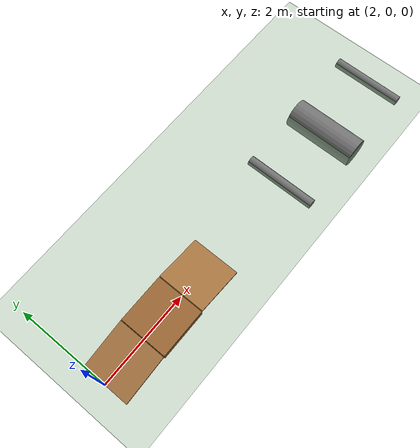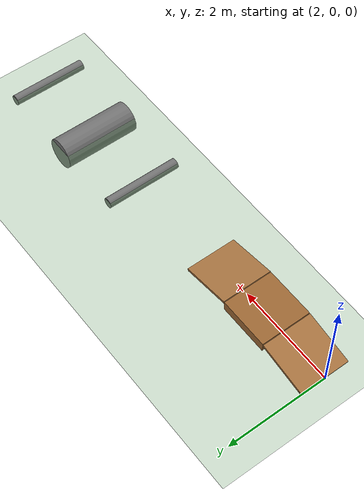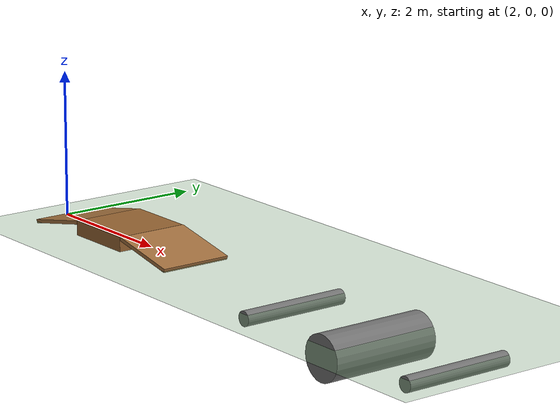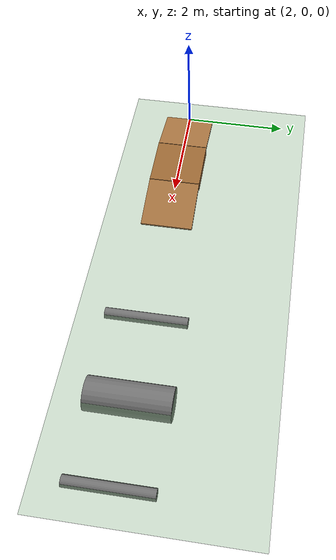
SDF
<?xml version="1.0" ?>
<sdf version="1.10">
  <world name="sensor_world">

    <!-- ===== Physics ===== -->
    <physics name="default_physics" default="0" type="dartsim">
      <max_step_size>0.001</max_step_size>
      <real_time_factor>1.0</real_time_factor>
    </physics>

    <!-- ===== Sistem pluginleri ===== -->
    <plugin filename="gz-sim-physics-system" name="gz::sim::systems::Physics"/>
    <plugin filename="gz-sim-user-commands-system" name="gz::sim::systems::UserCommands"/>
    <plugin filename="gz-sim-scene-broadcaster-system" name="gz::sim::systems::SceneBroadcaster"/>
    <plugin filename="gz-sim-contact-system" name="gz::sim::systems::Contact"/>
    <plugin filename="gz-sim-imu-system" name="gz::sim::systems::Imu"/>
    <plugin filename="gz-sim-navsat-system" name="gz::sim::systems::NavSat"/>
    <plugin filename="gz-sim-sensors-system" name="gz::sim::systems::Sensors">
      <render_engine>ogre2</render_engine>
    </plugin>

    <!-- ===== GPS referans noktası (Istanbul) ===== -->
    <spherical_coordinates>
      <surface_model>EARTH_WGS84</surface_model>
      <world_frame_orientation>ENU</world_frame_orientation>
      <latitude_deg>41.0082</latitude_deg>
      <longitude_deg>28.9784</longitude_deg>
      <elevation>40.0</elevation>
      <heading_deg>0</heading_deg>
    </spherical_coordinates>

    <!-- ===== Sahne görünümü ===== -->
    <scene>
      <ambient>0.4 0.4 0.4 1</ambient>
      <background>0.7 0.7 0.9 1</background>
      <shadows>true</shadows>
    </scene>

    <!-- ===== Güneş ===== -->
    <light type="directional" name="sun">
      <cast_shadows>true</cast_shadows>
      <pose>0 0 10 0 0 0</pose>
      <diffuse>0.8 0.8 0.8 1</diffuse>
      <specular>0.2 0.2 0.2 1</specular>
      <attenuation>
        <range>1000</range>
        <constant>0.9</constant>
        <linear>0.01</linear>
        <quadratic>0.001</quadratic>
      </attenuation>
      <direction>-0.5 0.1 -0.9</direction>
    </light>

    <!-- ===== Yer düzlemi ===== -->
    <model name="ground_plane">
      <static>true</static>
      <link name="link">
        <collision name="collision">
          <geometry>
            <plane>
              <normal>0 0 1</normal>
              <size>100 100</size>
            </plane>
          </geometry>
        </collision>
        <visual name="visual">
          <geometry>
            <plane>
              <normal>0 0 1</normal>
              <size>100 100</size>
            </plane>
          </geometry>
          <material>
            <ambient>0.3 0.5 0.3 1</ambient>
            <diffuse>0.4 0.6 0.4 1</diffuse>
            <specular>0.1 0.1 0.1 1</specular>
          </material>
        </visual>
      </link>
    </model>

    <!-- SENARYO 1: TEPE                                              -->
    <!--   Yokuş çık (1m, 11.5°), düz platform (1m, 20cm), yokuş in   -->

    <model name="hill_approach">
      <static>true</static>
      <pose>2.5 0 0.09 0 -0.2 0</pose>
      <link name="link">
        <collision name="c">
          <geometry>
            <box>
              <size>1.0 1.0 0.05</size>
            </box>
          </geometry>
        </collision>
        <visual name="v">
          <geometry>
            <box>
              <size>1.0 1.0 0.05</size>
            </box>
          </geometry>
          <material>
            <ambient>0.55 0.35 0.15 1</ambient>
            <diffuse>0.65 0.45 0.25 1</diffuse>
          </material>
        </visual>
      </link>
    </model>

    <model name="hill_top">
      <static>true</static>
      <pose>3.5 0 0.12 0 0 0</pose>
      <link name="link">
        <collision name="c">
          <geometry>
            <box>
              <size>1.0 1.0 0.20</size>
            </box>
          </geometry>
        </collision>
        <visual name="v">
          <geometry>
            <box>
              <size>1.0 1.0 0.20</size>
            </box>
          </geometry>
          <material>
            <ambient>0.5 0.3 0.1 1</ambient>
            <diffuse>0.6 0.4 0.2 1</diffuse>
          </material>
        </visual>
      </link>
    </model>

    <model name="hill_descent">
      <static>true</static>
      <pose>4.5 0 0.10 0 0.2 0</pose>
      <link name="link">
        <collision name="c">
          <geometry>
            <box>
              <size>1.0 1.0 0.05</size>
            </box>
          </geometry>
        </collision>
        <visual name="v">
          <geometry>
            <box>
              <size>1.0 1.0 0.05</size>
            </box>
          </geometry>
          <material>
            <ambient>0.55 0.35 0.15 1</ambient>
            <diffuse>0.65 0.45 0.25 1</diffuse>
          </material>
        </visual>
      </link>
    </model>

    <!-- SENARYO 2: SILINDIR KASISLER (gömülü, yatay)                 -->
    <!--   Silindir r=10cm, 7cm gömülü, 3cm yüksek bump, 14cm geniş  -->
    <!--   Yatay duruş: roll=π/2 ile axis Y'ye yatırılmış             -->
    <!--   Uzunluk 1.5m, rover yandan kaçamaz                         -->

    <model name="speed_bump_a">
      <static>true</static>
      <pose>7.0 0 -0.07 1.5708 0 0</pose>
      <link name="link">
        <collision name="c">
          <geometry>
            <cylinder>
              <radius>0.10</radius>
              <length>1.5</length>
            </cylinder>
          </geometry>
        </collision>
        <visual name="v">
          <geometry>
            <cylinder>
              <radius>0.10</radius>
              <length>1.5</length>
            </cylinder>
          </geometry>
          <material>
            <ambient>0.35 0.35 0.35 1</ambient>
            <diffuse>0.45 0.45 0.45 1</diffuse>
          </material>
        </visual>
      </link>
    </model>

    <model name="speed_bump_b">
      <static>true</static>
      <pose>8.5 0 -0.17 1.5708 0 0</pose>
      <link name="link">
        <collision name="c">
          <geometry>
            <cylinder>
              <radius>0.3</radius>
              <length>1.5</length>
            </cylinder>
          </geometry>
        </collision>
        <visual name="v">
          <geometry>
            <cylinder>
              <radius>0.30</radius>
              <length>1.5</length>
            </cylinder>
          </geometry>
          <material>
            <ambient>0.35 0.35 0.35 1</ambient>
            <diffuse>0.45 0.45 0.45 1</diffuse>
          </material>
        </visual>
      </link>
    </model>

    <model name="speed_bump_c">
      <static>true</static>
      <pose>10.0 0 -0.07 1.5708 0 0</pose>
      <link name="link">
        <collision name="c">
          <geometry>
            <cylinder>
              <radius>0.10</radius>
              <length>1.5</length>
            </cylinder>
          </geometry>
        </collision>
        <visual name="v">
          <geometry>
            <cylinder>
              <radius>0.10</radius>
              <length>1.5</length>
            </cylinder>
          </geometry>
          <material>
            <ambient>0.35 0.35 0.35 1</ambient>
            <diffuse>0.45 0.45 0.45 1</diffuse>
          </material>
        </visual>
      </link>
    </model>

  </world>
</sdf>
